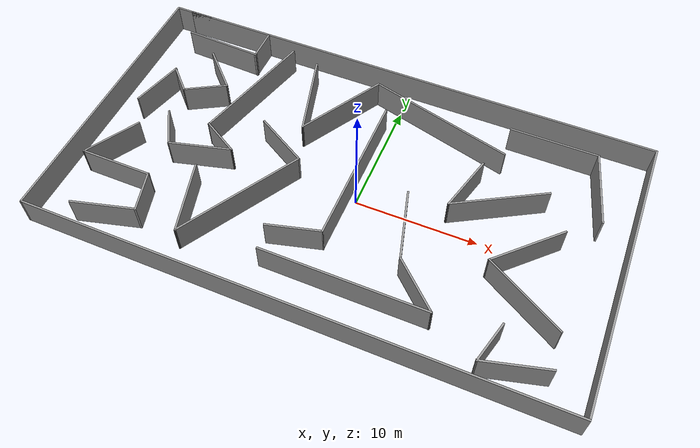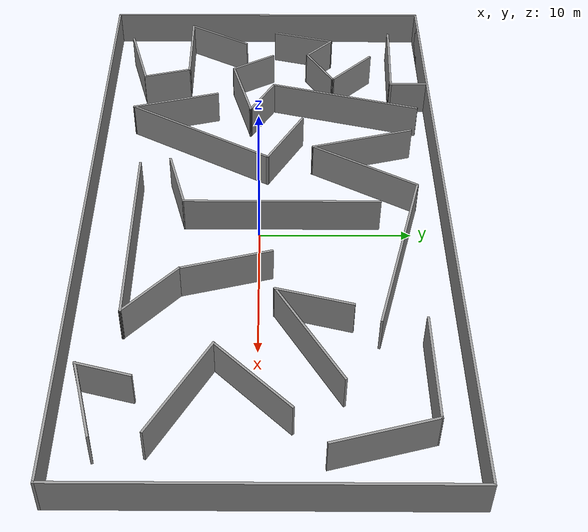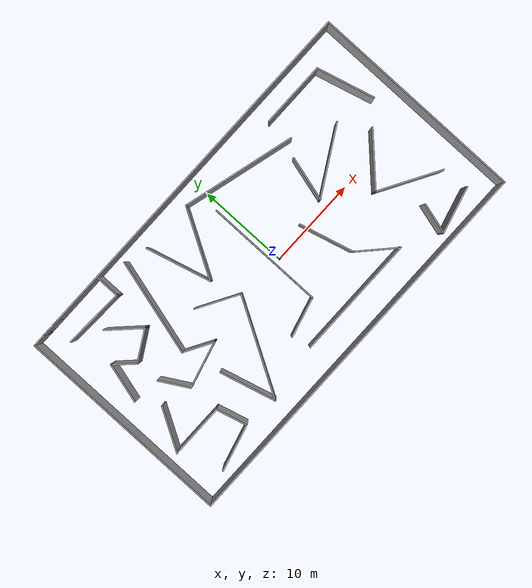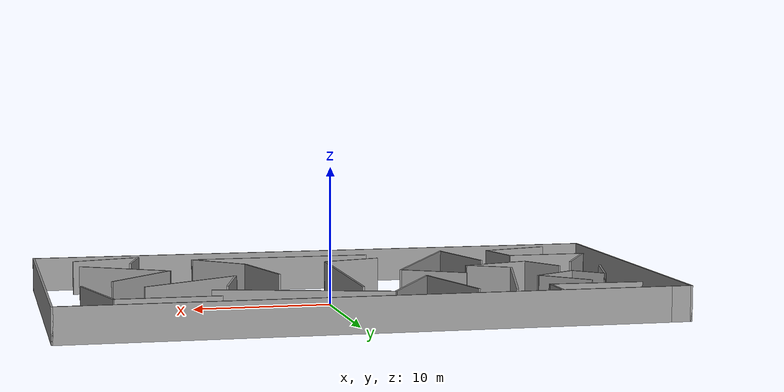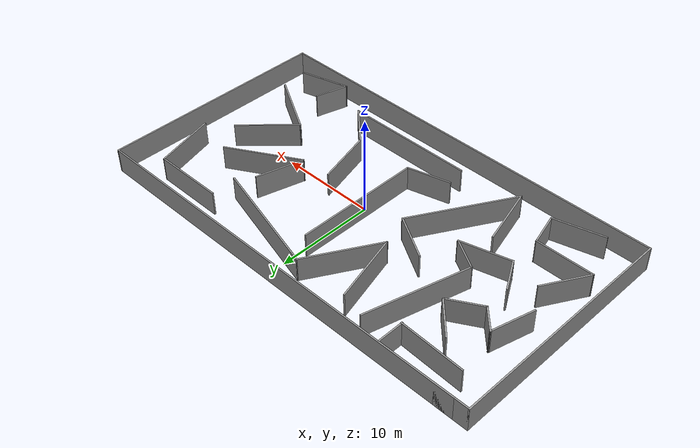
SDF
<?xml version='1.0'?>
<sdf version='1.7'>
  <model name='mimi2'>
    <pose>-1.02366 0.431173 0 0 -0 0</pose>
    <link name='Wall_0'>
      <collision name='Wall_0_Collision'>
        <geometry>
          <box>
            <size>42 0.15 2.5</size>
          </box>
        </geometry>
        <pose>0 0 1.25 0 -0 0</pose>
      </collision>
      <visual name='Wall_0_Visual'>
        <pose>0 0 1.25 0 -0 0</pose>
        <geometry>
          <box>
            <size>42 0.15 2.5</size>
          </box>
        </geometry>
        <material>
          <script>
            <uri>file://media/materials/scripts/gazebo.material</uri>
            <name>Gazebo/Grey</name>
          </script>
          <ambient>1 1 1 1</ambient>
        </material>
        <meta>
          <layer>0</layer>
        </meta>
      </visual>
      <pose>0.75 11.8 0 0 -0 0</pose>
    </link>
    <link name='Wall_1'>
      <collision name='Wall_1_Collision'>
        <geometry>
          <box>
            <size>23.75 0.15 2.5</size>
          </box>
        </geometry>
        <pose>0 0 1.25 0 -0 0</pose>
      </collision>
      <visual name='Wall_1_Visual'>
        <pose>0 0 1.25 0 -0 0</pose>
        <geometry>
          <box>
            <size>23.75 0.15 2.5</size>
          </box>
        </geometry>
        <material>
          <script>
            <uri>file://media/materials/scripts/gazebo.material</uri>
            <name>Gazebo/Grey</name>
          </script>
          <ambient>1 1 1 1</ambient>
        </material>
        <meta>
          <layer>0</layer>
        </meta>
      </visual>
      <pose>21.675 -0 0 0 -0 -1.5708</pose>
    </link>
    <link name='Wall_10'>
      <collision name='Wall_10_Collision'>
        <geometry>
          <box>
            <size>3.75 0.15 2.5</size>
          </box>
        </geometry>
        <pose>0 0 1.25 0 -0 0</pose>
      </collision>
      <visual name='Wall_10_Visual'>
        <pose>0 0 1.25 0 -0 0</pose>
        <geometry>
          <box>
            <size>3.75 0.15 2.5</size>
          </box>
        </geometry>
        <material>
          <script>
            <uri>file://media/materials/scripts/gazebo.material</uri>
            <name>Gazebo/Grey</name>
          </script>
          <ambient>1 1 1 1</ambient>
        </material>
        <meta>
          <layer>0</layer>
        </meta>
      </visual>
      <pose>-14.5675 3.96814 0 0 -0 -2.61799</pose>
    </link>
    <link name='Wall_11'>
      <collision name='Wall_11_Collision'>
        <geometry>
          <box>
            <size>2.75 0.15 2.5</size>
          </box>
        </geometry>
        <pose>0 0 1.25 0 -0 0</pose>
      </collision>
      <visual name='Wall_11_Visual'>
        <pose>0 0 1.25 0 -0 0</pose>
        <geometry>
          <box>
            <size>2.75 0.15 2.5</size>
          </box>
        </geometry>
        <material>
          <script>
            <uri>file://media/materials/scripts/gazebo.material</uri>
            <name>Gazebo/Grey</name>
          </script>
          <ambient>1 1 1 1</ambient>
        </material>
        <meta>
          <layer>0</layer>
        </meta>
      </visual>
      <pose>-17.0455 3.98738 0 0 -0 2.35619</pose>
    </link>
    <link name='Wall_12'>
      <collision name='Wall_12_Collision'>
        <geometry>
          <box>
            <size>4.5 0.15 2.5</size>
          </box>
        </geometry>
        <pose>0 0 1.25 0 -0 0</pose>
      </collision>
      <visual name='Wall_12_Visual'>
        <pose>0 0 1.25 0 -0 0</pose>
        <geometry>
          <box>
            <size>4.5 0.15 2.5</size>
          </box>
        </geometry>
        <material>
          <script>
            <uri>file://media/materials/scripts/gazebo.material</uri>
            <name>Gazebo/Grey</name>
          </script>
          <ambient>1 1 1 1</ambient>
        </material>
        <meta>
          <layer>0</layer>
        </meta>
      </visual>
      <pose>-18.5277 2.80573 0 0 -0 -1.8326</pose>
    </link>
    <link name='Wall_14'>
      <collision name='Wall_14_Collision'>
        <geometry>
          <box>
            <size>10.75 0.15 2.5</size>
          </box>
        </geometry>
        <pose>0 0 1.25 0 -0 0</pose>
      </collision>
      <visual name='Wall_14_Visual'>
        <pose>0 0 1.25 0 -0 0</pose>
        <geometry>
          <box>
            <size>10.75 0.15 2.5</size>
          </box>
        </geometry>
        <material>
          <script>
            <uri>file://media/materials/scripts/gazebo.material</uri>
            <name>Gazebo/Grey</name>
          </script>
          <ambient>1 1 1 1</ambient>
        </material>
        <meta>
          <layer>0</layer>
        </meta>
      </visual>
      <pose>-10.9473 5.63807 0 0 -0 -1.8326</pose>
    </link>
    <link name='Wall_15'>
      <collision name='Wall_15_Collision'>
        <geometry>
          <box>
            <size>3.5 0.15 2.5</size>
          </box>
        </geometry>
        <pose>0 0 1.25 0 -0 0</pose>
      </collision>
      <visual name='Wall_15_Visual'>
        <pose>0 0 1.25 0 -0 0</pose>
        <geometry>
          <box>
            <size>3.5 0.15 2.5</size>
          </box>
        </geometry>
        <material>
          <script>
            <uri>file://media/materials/scripts/gazebo.material</uri>
            <name>Gazebo/Grey</name>
          </script>
          <ambient>1 1 1 1</ambient>
        </material>
        <meta>
          <layer>0</layer>
        </meta>
      </visual>
      <pose>-10.8685 -0.318841 0 0 -0 -0.523599</pose>
    </link>
    <link name='Wall_16'>
      <collision name='Wall_16_Collision'>
        <geometry>
          <box>
            <size>5.25 0.15 2.5</size>
          </box>
        </geometry>
        <pose>0 0 1.25 0 -0 0</pose>
      </collision>
      <visual name='Wall_16_Visual'>
        <pose>0 0 1.25 0 -0 0</pose>
        <geometry>
          <box>
            <size>5.25 0.15 2.5</size>
          </box>
        </geometry>
        <material>
          <script>
            <uri>file://media/materials/scripts/gazebo.material</uri>
            <name>Gazebo/Grey</name>
          </script>
          <ambient>1 1 1 1</ambient>
        </material>
        <meta>
          <layer>0</layer>
        </meta>
      </visual>
      <pose>-11.881 -1.81633 0 0 -0 -2.87979</pose>
    </link>
    <link name='Wall_17'>
      <collision name='Wall_17_Collision'>
        <geometry>
          <box>
            <size>3.5 0.15 2.5</size>
          </box>
        </geometry>
        <pose>0 0 1.25 0 -0 0</pose>
      </collision>
      <visual name='Wall_17_Visual'>
        <pose>0 0 1.25 0 -0 0</pose>
        <geometry>
          <box>
            <size>3.5 0.15 2.5</size>
          </box>
        </geometry>
        <material>
          <script>
            <uri>file://media/materials/scripts/gazebo.material</uri>
            <name>Gazebo/Grey</name>
          </script>
          <ambient>1 1 1 1</ambient>
        </material>
        <meta>
          <layer>0</layer>
        </meta>
      </visual>
      <pose>-15.1816 -1.02573 0 0 -0 2.0944</pose>
    </link>
    <link name='Wall_19'>
      <collision name='Wall_19_Collision'>
        <geometry>
          <box>
            <size>5 0.15 2.5</size>
          </box>
        </geometry>
        <pose>0 0 1.25 0 -0 0</pose>
      </collision>
      <visual name='Wall_19_Visual'>
        <pose>0 0 1.25 0 -0 0</pose>
        <geometry>
          <box>
            <size>5 0.15 2.5</size>
          </box>
        </geometry>
        <material>
          <script>
            <uri>file://media/materials/scripts/gazebo.material</uri>
            <name>Gazebo/Grey</name>
          </script>
          <ambient>1 1 1 1</ambient>
        </material>
        <meta>
          <layer>0</layer>
        </meta>
      </visual>
      <pose>-18.844 -3.72556 0 0 -0 -2.0944</pose>
    </link>
    <link name='Wall_2'>
      <collision name='Wall_2_Collision'>
        <geometry>
          <box>
            <size>43.5 0.15 2.5</size>
          </box>
        </geometry>
        <pose>0 0 1.25 0 -0 0</pose>
      </collision>
      <visual name='Wall_2_Visual'>
        <pose>0 0 1.25 0 -0 0</pose>
        <geometry>
          <box>
            <size>43.5 0.15 2.5</size>
          </box>
        </geometry>
        <material>
          <script>
            <uri>file://media/materials/scripts/gazebo.material</uri>
            <name>Gazebo/Grey</name>
          </script>
          <ambient>1 1 1 1</ambient>
        </material>
        <meta>
          <layer>0</layer>
        </meta>
      </visual>
      <pose>-0 -11.8 0 0 -0 3.14159</pose>
    </link>
    <link name='Wall_20'>
      <collision name='Wall_20_Collision'>
        <geometry>
          <box>
            <size>6 0.15 2.5</size>
          </box>
        </geometry>
        <pose>0 0 1.25 0 -0 0</pose>
      </collision>
      <visual name='Wall_20_Visual'>
        <pose>0 0 1.25 0 -0 0</pose>
        <geometry>
          <box>
            <size>6 0.15 2.5</size>
          </box>
        </geometry>
        <material>
          <script>
            <uri>file://media/materials/scripts/gazebo.material</uri>
            <name>Gazebo/Grey</name>
          </script>
          <ambient>1 1 1 1</ambient>
        </material>
        <meta>
          <layer>0</layer>
        </meta>
      </visual>
      <pose>-17.1315 -5.82568 0 0 -0 0</pose>
    </link>
    <link name='Wall_21'>
      <collision name='Wall_21_Collision'>
        <geometry>
          <box>
            <size>3.5 0.15 2.5</size>
          </box>
        </geometry>
        <pose>0 0 1.25 0 -0 0</pose>
      </collision>
      <visual name='Wall_21_Visual'>
        <pose>0 0 1.25 0 -0 0</pose>
        <geometry>
          <box>
            <size>3.5 0.15 2.5</size>
          </box>
        </geometry>
        <material>
          <script>
            <uri>file://media/materials/scripts/gazebo.material</uri>
            <name>Gazebo/Grey</name>
          </script>
          <ambient>1 1 1 1</ambient>
        </material>
        <meta>
          <layer>0</layer>
        </meta>
      </visual>
      <pose>-13.773 -7.4436 0 0 -0 -1.309</pose>
    </link>
    <link name='Wall_22'>
      <collision name='Wall_22_Collision'>
        <geometry>
          <box>
            <size>5.25 0.15 2.5</size>
          </box>
        </geometry>
        <pose>0 0 1.25 0 -0 0</pose>
      </collision>
      <visual name='Wall_22_Visual'>
        <pose>0 0 1.25 0 -0 0</pose>
        <geometry>
          <box>
            <size>5.25 0.15 2.5</size>
          </box>
        </geometry>
        <material>
          <script>
            <uri>file://media/materials/scripts/gazebo.material</uri>
            <name>Gazebo/Grey</name>
          </script>
          <ambient>1 1 1 1</ambient>
        </material>
        <meta>
          <layer>0</layer>
        </meta>
      </visual>
      <pose>-15.8026 -9.72152 0 0 -0 -2.87979</pose>
    </link>
    <link name='Wall_24'>
      <collision name='Wall_24_Collision'>
        <geometry>
          <box>
            <size>6.25 0.15 2.5</size>
          </box>
        </geometry>
        <pose>0 0 1.25 0 -0 0</pose>
      </collision>
      <visual name='Wall_24_Visual'>
        <pose>0 0 1.25 0 -0 0</pose>
        <geometry>
          <box>
            <size>6.25 0.15 2.5</size>
          </box>
        </geometry>
        <material>
          <script>
            <uri>file://media/materials/scripts/gazebo.material</uri>
            <name>Gazebo/Grey</name>
          </script>
          <ambient>1 1 1 1</ambient>
        </material>
        <meta>
          <layer>0</layer>
        </meta>
      </visual>
      <pose>-10.4396 -6.57672 0 0 -0 -1.309</pose>
    </link>
    <link name='Wall_25'>
      <collision name='Wall_25_Collision'>
        <geometry>
          <box>
            <size>11.25 0.15 2.5</size>
          </box>
        </geometry>
        <pose>0 0 1.25 0 -0 0</pose>
      </collision>
      <visual name='Wall_25_Visual'>
        <pose>0 0 1.25 0 -0 0</pose>
        <geometry>
          <box>
            <size>11.25 0.15 2.5</size>
          </box>
        </geometry>
        <material>
          <script>
            <uri>file://media/materials/scripts/gazebo.material</uri>
            <name>Gazebo/Grey</name>
          </script>
          <ambient>1 1 1 1</ambient>
        </material>
        <meta>
          <layer>0</layer>
        </meta>
      </visual>
      <pose>-6.87518 -4.71635 0 0 -0 1.0472</pose>
    </link>
    <link name='Wall_26'>
      <collision name='Wall_26_Collision'>
        <geometry>
          <box>
            <size>5 0.15 2.5</size>
          </box>
        </geometry>
        <pose>0 0 1.25 0 -0 0</pose>
      </collision>
      <visual name='Wall_26_Visual'>
        <pose>0 0 1.25 0 -0 0</pose>
        <geometry>
          <box>
            <size>5 0.15 2.5</size>
          </box>
        </geometry>
        <material>
          <script>
            <uri>file://media/materials/scripts/gazebo.material</uri>
            <name>Gazebo/Grey</name>
          </script>
          <ambient>1 1 1 1</ambient>
        </material>
        <meta>
          <layer>0</layer>
        </meta>
      </visual>
      <pose>-6.20029 1.30259 0 0 -0 2.61799</pose>
    </link>
    <link name='Wall_28'>
      <collision name='Wall_28_Collision'>
        <geometry>
          <box>
            <size>7.25 0.15 2.5</size>
          </box>
        </geometry>
        <pose>0 0 1.25 0 -0 0</pose>
      </collision>
      <visual name='Wall_28_Visual'>
        <pose>0 0 1.25 0 -0 0</pose>
        <geometry>
          <box>
            <size>7.25 0.15 2.5</size>
          </box>
        </geometry>
        <material>
          <script>
            <uri>file://media/materials/scripts/gazebo.material</uri>
            <name>Gazebo/Grey</name>
          </script>
          <ambient>1 1 1 1</ambient>
        </material>
        <meta>
          <layer>0</layer>
        </meta>
      </visual>
      <pose>-6.12389 6.66004 0 0 -0 -1.309</pose>
    </link>
    <link name='Wall_29'>
      <collision name='Wall_29_Collision'>
        <geometry>
          <box>
            <size>8 0.15 2.5</size>
          </box>
        </geometry>
        <pose>0 0 1.25 0 -0 0</pose>
      </collision>
      <visual name='Wall_29_Visual'>
        <pose>0 0 1.25 0 -0 0</pose>
        <geometry>
          <box>
            <size>8 0.15 2.5</size>
          </box>
        </geometry>
        <material>
          <script>
            <uri>file://media/materials/scripts/gazebo.material</uri>
            <name>Gazebo/Grey</name>
          </script>
          <ambient>1 1 1 1</ambient>
        </material>
        <meta>
          <layer>0</layer>
        </meta>
      </visual>
      <pose>-3.24259 6.63015 0 0 -0 1.0472</pose>
    </link>
    <link name='Wall_3'>
      <collision name='Wall_3_Collision'>
        <geometry>
          <box>
            <size>23.75 0.15 2.5</size>
          </box>
        </geometry>
        <pose>0 0 1.25 0 -0 0</pose>
      </collision>
      <visual name='Wall_3_Visual'>
        <pose>0 0 1.25 0 -0 0</pose>
        <geometry>
          <box>
            <size>23.75 0.15 2.5</size>
          </box>
        </geometry>
        <material>
          <script>
            <uri>file://media/materials/scripts/gazebo.material</uri>
            <name>Gazebo/Grey</name>
          </script>
          <ambient>1 1 1 1</ambient>
        </material>
        <meta>
          <layer>0</layer>
        </meta>
      </visual>
      <pose>-21.675 -0 0 0 -0 1.5708</pose>
    </link>
    <link name='Wall_30'>
      <collision name='Wall_30_Collision'>
        <geometry>
          <box>
            <size>12.5 0.15 2.5</size>
          </box>
        </geometry>
        <pose>0 0 1.25 0 -0 0</pose>
      </collision>
      <visual name='Wall_30_Visual'>
        <pose>0 0 1.25 0 -0 0</pose>
        <geometry>
          <box>
            <size>12.5 0.15 2.5</size>
          </box>
        </geometry>
        <material>
          <script>
            <uri>file://media/materials/scripts/gazebo.material</uri>
            <name>Gazebo/Grey</name>
          </script>
          <ambient>1 1 1 1</ambient>
        </material>
        <meta>
          <layer>0</layer>
        </meta>
      </visual>
      <pose>4.68451 8.43109 0 0 -0 -0.261799</pose>
    </link>
    <link name='Wall_32'>
      <collision name='Wall_32_Collision'>
        <geometry>
          <box>
            <size>13 0.15 2.5</size>
          </box>
        </geometry>
        <pose>0 0 1.25 0 -0 0</pose>
      </collision>
      <visual name='Wall_32_Visual'>
        <pose>0 0 1.25 0 -0 0</pose>
        <geometry>
          <box>
            <size>13 0.15 2.5</size>
          </box>
        </geometry>
        <material>
          <script>
            <uri>file://media/materials/scripts/gazebo.material</uri>
            <name>Gazebo/Grey</name>
          </script>
          <ambient>1 1 1 1</ambient>
        </material>
        <meta>
          <layer>0</layer>
        </meta>
      </visual>
      <pose>0.380019 1.02567 0 0 -0 -1.5708</pose>
    </link>
    <link name='Wall_33'>
      <collision name='Wall_33_Collision'>
        <geometry>
          <box>
            <size>4.5 0.15 2.5</size>
          </box>
        </geometry>
        <pose>0 0 1.25 0 -0 0</pose>
      </collision>
      <visual name='Wall_33_Visual'>
        <pose>0 0 1.25 0 -0 0</pose>
        <geometry>
          <box>
            <size>4.5 0.15 2.5</size>
          </box>
        </geometry>
        <material>
          <script>
            <uri>file://media/materials/scripts/gazebo.material</uri>
            <name>Gazebo/Grey</name>
          </script>
          <ambient>1 1 1 1</ambient>
        </material>
        <meta>
          <layer>0</layer>
        </meta>
      </visual>
      <pose>-1.72087 -5.96226 0 0 -0 -2.87979</pose>
    </link>
    <link name='Wall_35'>
      <collision name='Wall_35_Collision'>
        <geometry>
          <box>
            <size>13.5 0.15 2.5</size>
          </box>
        </geometry>
        <pose>0 0 1.25 0 -0 0</pose>
      </collision>
      <visual name='Wall_35_Visual'>
        <pose>0 0 1.25 0 -0 0</pose>
        <geometry>
          <box>
            <size>13.5 0.15 2.5</size>
          </box>
        </geometry>
        <material>
          <script>
            <uri>file://media/materials/scripts/gazebo.material</uri>
            <name>Gazebo/Grey</name>
          </script>
          <ambient>1 1 1 1</ambient>
        </material>
        <meta>
          <layer>0</layer>
        </meta>
      </visual>
      <pose>3.29089 -8.55567 0 0 -0 0</pose>
    </link>
    <link name='Wall_36'>
      <collision name='Wall_36_Collision'>
        <geometry>
          <box>
            <size>4.89567 0.15 2.5</size>
          </box>
        </geometry>
        <pose>0 0 1.25 0 -0 0</pose>
      </collision>
      <visual name='Wall_36_Visual'>
        <pose>0 0 1.25 0 -0 0</pose>
        <geometry>
          <box>
            <size>4.89567 0.15 2.5</size>
          </box>
        </geometry>
        <material>
          <script>
            <uri>file://media/materials/scripts/gazebo.material</uri>
            <name>Gazebo/Grey</name>
          </script>
          <ambient>1 1 1 1</ambient>
        </material>
        <meta>
          <layer>0</layer>
        </meta>
      </visual>
      <pose>8.22831 -6.93977 0 0 -0 2.39247</pose>
    </link>
    <link name='Wall_37'>
      <collision name='Wall_37_Collision'>
        <geometry>
          <box>
            <size>6 0.15 2.5</size>
          </box>
        </geometry>
        <pose>0 0 1.25 0 -0 0</pose>
      </collision>
      <visual name='Wall_37_Visual'>
        <pose>0 0 1.25 0 -0 0</pose>
        <geometry>
          <box>
            <size>6 0.15 2.5</size>
          </box>
        </geometry>
        <material>
          <script>
            <uri>file://media/materials/scripts/gazebo.material</uri>
            <name>Gazebo/Grey</name>
          </script>
          <ambient>1 1 1 1</ambient>
        </material>
        <meta>
          <layer>0</layer>
        </meta>
      </visual>
      <pose>5.69849 -2.42818 0 0 -0 1.8326</pose>
    </link>
    <link name='Wall_39'>
      <collision name='Wall_39_Collision'>
        <geometry>
          <box>
            <size>5 0.15 2.5</size>
          </box>
        </geometry>
        <pose>0 0 1.25 0 -0 0</pose>
      </collision>
      <visual name='Wall_39_Visual'>
        <pose>0 0 1.25 0 -0 0</pose>
        <geometry>
          <box>
            <size>5 0.15 2.5</size>
          </box>
        </geometry>
        <material>
          <script>
            <uri>file://media/materials/scripts/gazebo.material</uri>
            <name>Gazebo/Grey</name>
          </script>
          <ambient>1 1 1 1</ambient>
        </material>
        <meta>
          <layer>0</layer>
        </meta>
      </visual>
      <pose>8.75815 2.92721 0 0 -0 -1.8326</pose>
    </link>
    <link name='Wall_4'>
      <collision name='Wall_4_Collision'>
        <geometry>
          <box>
            <size>3.5 0.15 2.5</size>
          </box>
        </geometry>
        <pose>0 0 1.25 0 -0 0</pose>
      </collision>
      <visual name='Wall_4_Visual'>
        <pose>0 0 1.25 0 -0 0</pose>
        <geometry>
          <box>
            <size>3.5 0.15 2.5</size>
          </box>
        </geometry>
        <material>
          <script>
            <uri>file://media/materials/scripts/gazebo.material</uri>
            <name>Gazebo/Grey</name>
          </script>
          <ambient>1 1 1 1</ambient>
        </material>
        <meta>
          <layer>0</layer>
        </meta>
      </visual>
      <pose>-20 11.8 0 0 -0 0</pose>
    </link>
    <link name='Wall_40'>
      <collision name='Wall_40_Collision'>
        <geometry>
          <box>
            <size>8 0.15 2.5</size>
          </box>
        </geometry>
        <pose>0 0 1.25 0 -0 0</pose>
      </collision>
      <visual name='Wall_40_Visual'>
        <pose>0 0 1.25 0 -0 0</pose>
        <geometry>
          <box>
            <size>8 0.15 2.5</size>
          </box>
        </geometry>
        <material>
          <script>
            <uri>file://media/materials/scripts/gazebo.material</uri>
            <name>Gazebo/Grey</name>
          </script>
          <ambient>1 1 1 1</ambient>
        </material>
        <meta>
          <layer>0</layer>
        </meta>
      </visual>
      <pose>11.5297 2.54734 0 0 -0 0.523599</pose>
    </link>
    <link name='Wall_42'>
      <collision name='Wall_42_Collision'>
        <geometry>
          <box>
            <size>7.25 0.15 2.5</size>
          </box>
        </geometry>
        <pose>0 0 1.25 0 -0 0</pose>
      </collision>
      <visual name='Wall_42_Visual'>
        <pose>0 0 1.25 0 -0 0</pose>
        <geometry>
          <box>
            <size>7.25 0.15 2.5</size>
          </box>
        </geometry>
        <material>
          <script>
            <uri>file://media/materials/scripts/gazebo.material</uri>
            <name>Gazebo/Grey</name>
          </script>
          <ambient>1 1 1 1</ambient>
        </material>
        <meta>
          <layer>0</layer>
        </meta>
      </visual>
      <pose>13.9911 9.56139 0 0 -0 0</pose>
    </link>
    <link name='Wall_43'>
      <collision name='Wall_43_Collision'>
        <geometry>
          <box>
            <size>6.5 0.15 2.5</size>
          </box>
        </geometry>
        <pose>0 0 1.25 0 -0 0</pose>
      </collision>
      <visual name='Wall_43_Visual'>
        <pose>0 0 1.25 0 -0 0</pose>
        <geometry>
          <box>
            <size>6.5 0.15 2.5</size>
          </box>
        </geometry>
        <material>
          <script>
            <uri>file://media/materials/scripts/gazebo.material</uri>
            <name>Gazebo/Grey</name>
          </script>
          <ambient>1 1 1 1</ambient>
        </material>
        <meta>
          <layer>0</layer>
        </meta>
      </visual>
      <pose>18.3629 6.49458 0 0 -0 -1.309</pose>
    </link>
    <link name='Wall_45'>
      <collision name='Wall_45_Collision'>
        <geometry>
          <box>
            <size>6.5 0.15 2.5</size>
          </box>
        </geometry>
        <pose>0 0 1.25 0 -0 0</pose>
      </collision>
      <visual name='Wall_45_Visual'>
        <pose>0 0 1.25 0 -0 0</pose>
        <geometry>
          <box>
            <size>6.5 0.15 2.5</size>
          </box>
        </geometry>
        <material>
          <script>
            <uri>file://media/materials/scripts/gazebo.material</uri>
            <name>Gazebo/Grey</name>
          </script>
          <ambient>1 1 1 1</ambient>
        </material>
        <meta>
          <layer>0</layer>
        </meta>
      </visual>
      <pose>14.6338 -0.704427 0 0 -0 -2.35619</pose>
    </link>
    <link name='Wall_46'>
      <collision name='Wall_46_Collision'>
        <geometry>
          <box>
            <size>7.25 0.15 2.5</size>
          </box>
        </geometry>
        <pose>0 0 1.25 0 -0 0</pose>
      </collision>
      <visual name='Wall_46_Visual'>
        <pose>0 0 1.25 0 -0 0</pose>
        <geometry>
          <box>
            <size>7.25 0.15 2.5</size>
          </box>
        </geometry>
        <material>
          <script>
            <uri>file://media/materials/scripts/gazebo.material</uri>
            <name>Gazebo/Grey</name>
          </script>
          <ambient>1 1 1 1</ambient>
        </material>
        <meta>
          <layer>0</layer>
        </meta>
      </visual>
      <pose>15.4631 -4.72449 0 0 -0 -0.523599</pose>
    </link>
    <link name='Wall_48'>
      <collision name='Wall_48_Collision'>
        <geometry>
          <box>
            <size>3.5 0.15 2.5</size>
          </box>
        </geometry>
        <pose>0 0 1.25 0 -0 0</pose>
      </collision>
      <visual name='Wall_48_Visual'>
        <pose>0 0 1.25 0 -0 0</pose>
        <geometry>
          <box>
            <size>3.5 0.15 2.5</size>
          </box>
        </geometry>
        <material>
          <script>
            <uri>file://media/materials/scripts/gazebo.material</uri>
            <name>Gazebo/Grey</name>
          </script>
          <ambient>1 1 1 1</ambient>
        </material>
        <meta>
          <layer>0</layer>
        </meta>
      </visual>
      <pose>14.3346 -9.08305 0 0 -0 -1.8326</pose>
    </link>
    <link name='Wall_49'>
      <collision name='Wall_49_Collision'>
        <geometry>
          <box>
            <size>5.25 0.15 2.5</size>
          </box>
        </geometry>
        <pose>0 0 1.25 0 -0 0</pose>
      </collision>
      <visual name='Wall_49_Visual'>
        <pose>0 0 1.25 0 -0 0</pose>
        <geometry>
          <box>
            <size>5.25 0.15 2.5</size>
          </box>
        </geometry>
        <material>
          <script>
            <uri>file://media/materials/scripts/gazebo.material</uri>
            <name>Gazebo/Grey</name>
          </script>
          <ambient>1 1 1 1</ambient>
        </material>
        <meta>
          <layer>0</layer>
        </meta>
      </visual>
      <pose>16.3642 -10.041 0 0 -0 0.261799</pose>
    </link>
    <link name='Wall_6'>
      <collision name='Wall_6_Collision'>
        <geometry>
          <box>
            <size>6.66928 0.15 2.5</size>
          </box>
        </geometry>
        <pose>0 0 1.25 0 -0 0</pose>
      </collision>
      <visual name='Wall_6_Visual'>
        <pose>0 0 1.25 0 -0 0</pose>
        <geometry>
          <box>
            <size>6.66928 0.15 2.5</size>
          </box>
        </geometry>
        <material>
          <script>
            <uri>file://media/materials/scripts/gazebo.material</uri>
            <name>Gazebo/Grey</name>
          </script>
          <ambient>1 1 1 1</ambient>
        </material>
        <meta>
          <layer>0</layer>
        </meta>
      </visual>
      <pose>-15.6951 9.26214 0 0 -0 -0.043182</pose>
    </link>
    <link name='Wall_7'>
      <collision name='Wall_7_Collision'>
        <geometry>
          <box>
            <size>2.75 0.15 2.5</size>
          </box>
        </geometry>
        <pose>0 0 1.25 0 -0 0</pose>
      </collision>
      <visual name='Wall_7_Visual'>
        <pose>0 0 1.25 0 -0 0</pose>
        <geometry>
          <box>
            <size>2.75 0.15 2.5</size>
          </box>
        </geometry>
        <material>
          <script>
            <uri>file://media/materials/scripts/gazebo.material</uri>
            <name>Gazebo/Grey</name>
          </script>
          <ambient>1 1 1 1</ambient>
        </material>
        <meta>
          <layer>0</layer>
        </meta>
      </visual>
      <pose>-12.4737 10.3863 0 0 -0 1.5708</pose>
    </link>
    <link name='Wall_9'>
      <collision name='Wall_9_Collision'>
        <geometry>
          <box>
            <size>4.25 0.15 2.5</size>
          </box>
        </geometry>
        <pose>0 0 1.25 0 -0 0</pose>
      </collision>
      <visual name='Wall_9_Visual'>
        <pose>0 0 1.25 0 -0 0</pose>
        <geometry>
          <box>
            <size>4.25 0.15 2.5</size>
          </box>
        </geometry>
        <material>
          <script>
            <uri>file://media/materials/scripts/gazebo.material</uri>
            <name>Gazebo/Grey</name>
          </script>
          <ambient>1 1 1 1</ambient>
        </material>
        <meta>
          <layer>0</layer>
        </meta>
      </visual>
      <pose>-14.4582 6.31771 0 0 -0 -0.785398</pose>
    </link>
    <static>1</static>
  </model>
</sdf>
